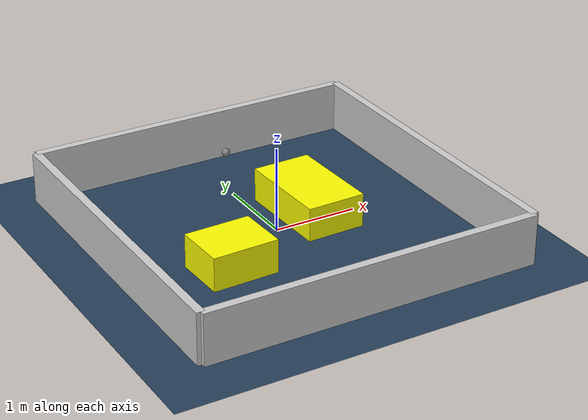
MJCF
<?xml version="1.0" ?>
<mujoco model="generated_environment">
  <option timestep="0.01" integrator="RK4" cone="elliptic"/>
  <default>
    <geom density="1"/>
  </default>
  <asset>
    <texture builtin="gradient" height="3072" rgb1="0.3 0.5 0.7" rgb2="0 0 0" type="skybox" width="512"/>
    <texture builtin="checker" height="300" mark="edge" markrgb="0.8 0.8 0.8" name="groundplane" rgb1="0.2 0.3 0.4" rgb2="0.1 0.2 0.3" type="2d" width="300"/>
    <material name="groundplane" reflectance="0.2" texrepeat="5 5" texture="groundplane" texuniform="true"/>
    <material name="robot" rgba="0.0 1.0 0.0 1"/>
  </asset>
  <worldbody>
    <light dir="0 0 -1" directional="true" pos="0 0 1.5"/>
    <geom condim="4" friction="1.0 0.005 0.001" material="groundplane" name="floor" size="0 0 0.05" type="plane"/>
    <body name="walls">
      <geom name="wall_1" condim="4" pos="-2.0 0.0 0.3" rgba="0.800000011920929 0.800000011920929 0.800000011920929 1.0" size="0.05 2.0 0.3" type="box"/>
      <geom name="wall_2" condim="4" pos="2.0 0.0 0.3" rgba="0.800000011920929 0.800000011920929 0.800000011920929 1.0" size="0.05 2.0 0.3" type="box"/>
      <geom name="wall_3" condim="4" pos="0.0 -2.0 0.3" rgba="0.800000011920929 0.800000011920929 0.800000011920929 1.0" size="2.0 0.05 0.3" type="box"/>
      <geom name="wall_4" condim="4" pos="0.0 2.0 0.3" rgba="0.800000011920929 0.800000011920929 0.800000011920929 1.0" size="2.0 0.05 0.3" type="box"/>
    </body>
    <body name="robot">
      <joint name="joint_x" type="slide" pos="0 0 0" axis="1 0 0"/>
      <joint name="joint_y" type="slide" pos="0 0 0" axis="0 1 0"/>
      <geom name="robot" type="sphere" pos="0.26104151972870193 1.6641265750416148 0.2" size="0.05" mass="5." friction="1.0 0.005 0.0001" condim="4"/>
      <site name="sensor_ball"/>
    </body>
    <body name="obstacle_1_movable">
      <geom name="obstacle_1_movable" condim="4" pos="0.5133304352773969 0.18323684388731132 0.2" euler="0 0 1.511036574705531" friction="1.0 0.005 0.001" rgba="1 1 0 1" size="0.35295574153582154 0.5830638005423798 0.2" type="box" mass="0.1"/>
      <joint type="free"/>
    </body>
    <body name="obstacle_2_movable">
      <geom name="obstacle_2_movable" condim="4" pos="-0.8610697327791245 -0.5242955782880216 0.2" euler="0 0 271.7911269260584" friction="1.0 0.005 0.001" rgba="1 1 0 1" size="0.3109273851653117 0.3938427353363019 0.2" type="box" mass="0.1"/>
      <joint type="free"/>
    </body>
  </worldbody>
  <actuator>
    <motor name="actuator_x" joint="joint_x" gear="1" ctrlrange="-1 1"/>
    <motor name="actuator_y" joint="joint_y" gear="1" ctrlrange="-1 1"/>
  </actuator>
</mujoco>
